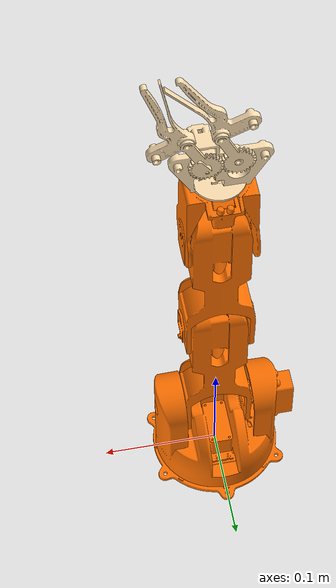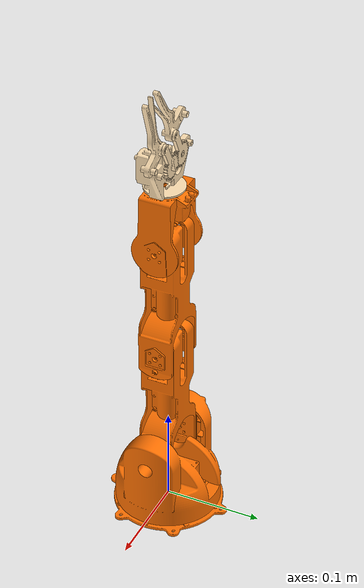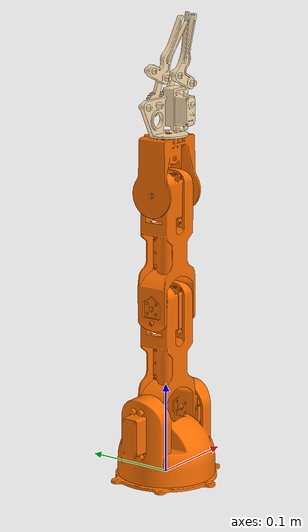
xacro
<?xml version="1.0"?>
<robot name="tinkerkit" xmlns:xacro="http://www.ros.org/wiki/xacro">

  <link name="world"/>
  <link name="base_link">
        <inertial>
          <origin xyz="-8.815968575877116e-11 -8.373690091943536e-06 -0.0020457767656326385" rpy="0 0 0"/>
          <mass value="0.26151625122186467"/>
          <inertia ixx="0.000211" iyy="0.000211" izz="0.00042" ixy="-0.0" iyz="0.0" ixz="0.0"/>
        </inertial>
        <visual>
          <origin xyz="0 0 0" rpy="0 0 0"/>
          <geometry>
            <mesh filename="file://$(find tinkerkit_description)/meshes/base_link.stl" scale="0.001 0.001 0.001"/>
          </geometry>
          <material name="orange"/>
        </visual>
        <collision>
          <origin xyz="0 0 0" rpy="0 0 0"/>
          <geometry>
            <mesh filename="file://$(find tinkerkit_description)/meshes/base_link.stl" scale="0.001 0.001 0.001"/>
          </geometry>
        </collision>
      </link>

      <link name="shoulder_link">
        <inertial>
          <origin xyz="-0.006612279775624162 0.0009286319656992241 0.03435507691537748" rpy="0 0 0"/>
          <mass value="1.4336400409360666"/>
          <inertia ixx="0.001446" iyy="0.002382" izz="0.002442" ixy="-1.4e-05" iyz="4.7e-05" ixz="0.000167"/>
        </inertial>
        <visual>
          <origin xyz="-0.0 0.0 -0.0045" rpy="0 0 0"/>
          <geometry>
            <mesh filename="file://$(find tinkerkit_description)/meshes/shoulder_link.stl" scale="0.001 0.001 0.001"/>
          </geometry>
          <material name="orange"/>
        </visual>
        <collision>
          <origin xyz="-0.0 0.0 -0.0045" rpy="0 0 0"/>
          <geometry>
            <mesh filename="file://$(find tinkerkit_description)/meshes/shoulder_link.stl" scale="0.001 0.001 0.001"/>
          </geometry>
        </collision>
      </link>

      <link name="elbow_link">
        <inertial>
          <origin xyz="0.031014922226379638 5.8966344082598925e-08 0.07988854538398496" rpy="0 0 0"/>
          <mass value="0.6371891032747334"/>
          <inertia ixx="0.001415" iyy="0.001508" izz="0.000237" ixy="0.0" iyz="0.0" ixz="-3.7e-05"/>
        </inertial>
        <visual>
          <origin xyz="0.03005 0.0005 -0.06705" rpy="0 0 0"/>
          <geometry>
            <mesh filename="file://$(find tinkerkit_description)/meshes/elbow_link.stl" scale="0.001 0.001 0.001"/>
          </geometry>
          <material name="orange"/>
        </visual>
        <collision>
          <origin xyz="0.03005 0.0005 -0.06705" rpy="0 0 0"/>
          <geometry>
            <mesh filename="file://$(find tinkerkit_description)/meshes/elbow_link.stl" scale="0.001 0.001 0.001"/>
          </geometry>
        </collision>
      </link>

      <link name="arm_link">
        <inertial>
          <origin xyz="-0.023372645391427256 5.89663440894294e-08 0.07988854538398499" rpy="0 0 0"/>
          <mass value="0.6371891032747333"/>
          <inertia ixx="0.001415" iyy="0.001505" izz="0.000235" ixy="0.0" iyz="0.0" ixz="-6e-06"/>
        </inertial>
        <visual>
          <origin xyz="-0.0249 0.0005 -0.19155" rpy="0 0 0"/>
          <geometry>
            <mesh filename="file://$(find tinkerkit_description)/meshes/arm_link.stl" scale="0.001 0.001 0.001"/>
          </geometry>
          <material name="orange"/>
        </visual>
        <collision>
          <origin xyz="-0.0249 0.0005 -0.19155" rpy="0 0 0"/>
          <geometry>
            <mesh filename="file://$(find tinkerkit_description)/meshes/arm_link.stl" scale="0.001 0.001 0.001"/>
          </geometry>
        </collision>
      </link>

      <link name="wrist_link">
        <inertial>
          <origin xyz="-0.023767157805537904 0.0021176104245903557 0.034630748217441" rpy="0 0 0"/>
          <mass value="0.3172253432137595"/>
          <inertia ixx="0.000205" iyy="0.000283" izz="0.000157" ixy="0.0" iyz="-8e-06" ixz="7e-06"/>
        </inertial>
        <visual>
          <origin xyz="-0.02485 0.0005 -0.31605" rpy="0 0 0"/>
          <geometry>
            <mesh filename="file://$(find tinkerkit_description)/meshes/wrist_link.stl" scale="0.001 0.001 0.001"/>
          </geometry>
          <material name="orange"/>
        </visual>
        <collision>
          <origin xyz="-0.02485 0.0005 -0.31605" rpy="0 0 0"/>
          <geometry>
            <mesh filename="file://$(find tinkerkit_description)/meshes/wrist_link.stl" scale="0.001 0.001 0.001"/>
          </geometry>
        </collision>
      </link>

      <link name="hand_link">
        <inertial>
          <origin xyz="0.007019943319143186 -0.0018338333814194177 0.02416928417282649" rpy="0 0 0"/>
          <mass value="0.22377606788964716"/>
          <inertia ixx="5.7e-05" iyy="8.6e-05" izz="6.4e-05" ixy="7e-06" iyz="1e-06" ixz="-5e-06"/>
        </inertial>
        <visual>
          <origin xyz="-0.0006 0.0027 -0.377" rpy="0 0 0"/>
          <geometry>
            <mesh filename="file://$(find tinkerkit_description)/meshes/hand_link.stl" scale="0.001 0.001 0.001"/>
          </geometry>
          <material name="amber"/>
        </visual>
        <collision>
          <origin xyz="-0.0006 0.0027 -0.377" rpy="0 0 0"/>
          <geometry>
            <mesh filename="file://$(find tinkerkit_description)/meshes/hand_link.stl" scale="0.001 0.001 0.001"/>
          </geometry>
        </collision>
      </link>

      <link name="right_gripper">
        <inertial>
          <origin xyz="-0.005439407698862081 -0.0008925611032257978 0.03446048218916753" rpy="0 0 0"/>
          <mass value="0.05351412988548039"/>
          <inertia ixx="3.8e-05" iyy="4.3e-05" izz="5e-06" ixy="-0.0" iyz="2e-06" ixz="-1e-06"/>
        </inertial>
        <visual>
          <origin xyz="0.01145 -0.0059 -0.411" rpy="0 0 0"/>
          <geometry>
            <mesh filename="file://$(find tinkerkit_description)/meshes/right_gripper.stl" scale="0.001 0.001 0.001"/>
          </geometry>
          <material name="amber"/>
        </visual>
        <collision>
          <origin xyz="0.01145 -0.0059 -0.411" rpy="0 0 0"/>
          <geometry>
            <mesh filename="file://$(find tinkerkit_description)/meshes/right_gripper.stl" scale="0.001 0.001 0.001"/>
          </geometry>
        </collision>
      </link>

      <link name="left_gripper">
        <inertial>
          <origin xyz="0.005593296891977666 -0.0006518904377838686 0.033557124123334836" rpy="0 0 0"/>
          <mass value="0.05512717338130934"/>
          <inertia ixx="4e-05" iyy="4.4e-05" izz="6e-06" ixy="1e-06" iyz="3e-06" ixz="0.0"/>
        </inertial>
        <visual>
          <origin xyz="-0.0126 -0.00695 -0.4109" rpy="0 0 0"/>
          <geometry>
            <mesh filename="file://$(find tinkerkit_description)/meshes/left_gripper.stl" scale="0.001 0.001 0.001"/>
          </geometry>
          <material name="amber"/>
        </visual>
        <collision>
          <origin xyz="-0.0126 -0.00695 -0.4109" rpy="0 0 0"/>
          <geometry>
            <mesh filename="file://$(find tinkerkit_description)/meshes/left_gripper.stl" scale="0.001 0.001 0.001"/>
          </geometry>
        </collision>
      </link>
      <joint name="virtual_joint" type="fixed">
        <parent link="world"/>
        <child link="base_link"/>
        <origin xyz="0 0 0" rpy="0 0 0"/>
      </joint>

      <joint name="base_joint" type="revolute">
        <origin xyz="0.0 0.0 0.0045" rpy="0 0 0"/>
        <parent link="base_link"/>
        <child link="shoulder_link"/>
        <axis xyz="0.0 -0.0 1.0"/>
        <limit upper="6.283185" lower="0.0" effort="100" velocity="100"/>
      </joint>

      <joint name="shoulder_joint" type="revolute">
        <origin xyz="-0.03005 -0.0005 0.06255" rpy="0 0 0"/>
        <parent link="shoulder_link"/>
        <child link="elbow_link"/>
        <axis xyz="1.0 0.0 -0.0"/>
        <limit upper="1.22173" lower="-1.22173" effort="100" velocity="100"/>
      </joint>

      <joint name="elbow_joint" type="revolute">
        <origin xyz="0.05495 0.0 0.1245" rpy="0 0 0"/>
        <parent link="elbow_link"/>
        <child link="arm_link"/>
        <axis xyz="1.0 0.0 -0.0"/>
        <limit upper="1.745329" lower="-1.745329" effort="100" velocity="100"/>
      </joint>

      <joint name="wrist_joint" type="revolute">
        <origin xyz="-5e-05 0.0 0.1245" rpy="0 0 0"/>
        <parent link="arm_link"/>
        <child link="wrist_link"/>
        <axis xyz="1.0 0.0 -0.0"/>
        <limit upper="1.919862" lower="-1.919862" effort="100" velocity="100"/>
      </joint>

      <joint name="hand_joint" type="revolute">
        <origin xyz="-0.02425 -0.0022 0.06095" rpy="0 0 0"/>
        <parent link="wrist_link"/>
        <child link="hand_link"/>
        <axis xyz="-0.0 0.0 1.0"/>
        <limit upper="6.283185" lower="0.0" effort="100" velocity="100"/>
      </joint>

      <joint name="right_gripper_joint" type="revolute">
        <origin xyz="-0.01205 0.0086 0.034" rpy="0 0 0"/>
        <parent link="hand_link"/>
        <child link="right_gripper"/>
        <axis xyz="0.0 1.0 0.0"/>
        <limit upper="0.872665" lower="0.017453" effort="100" velocity="100"/>
        <mimic joint="left_gripper_joint" />
      </joint>

      <joint name="left_gripper_joint" type="revolute">
        <origin xyz="0.012 0.00965 0.0339" rpy="0 0 0"/>
        <parent link="hand_link"/>
        <child link="left_gripper"/>
        <axis xyz="0.0 -1.0 0.0"/>
        <limit upper="-0.017453" lower="-0.872665" effort="100" velocity="100"/>
      </joint>

      <material name="silver">
        <color rgba="0.700 0.700 0.700 1.000"/>
      </material>
      <material name="orange">
        <color rgba="1.00 0.44 0.0 1" />
     </material>
     <material name="amber">
        <color rgba="1.00 0.88 0.7 1" />
     </material>

      </robot>
